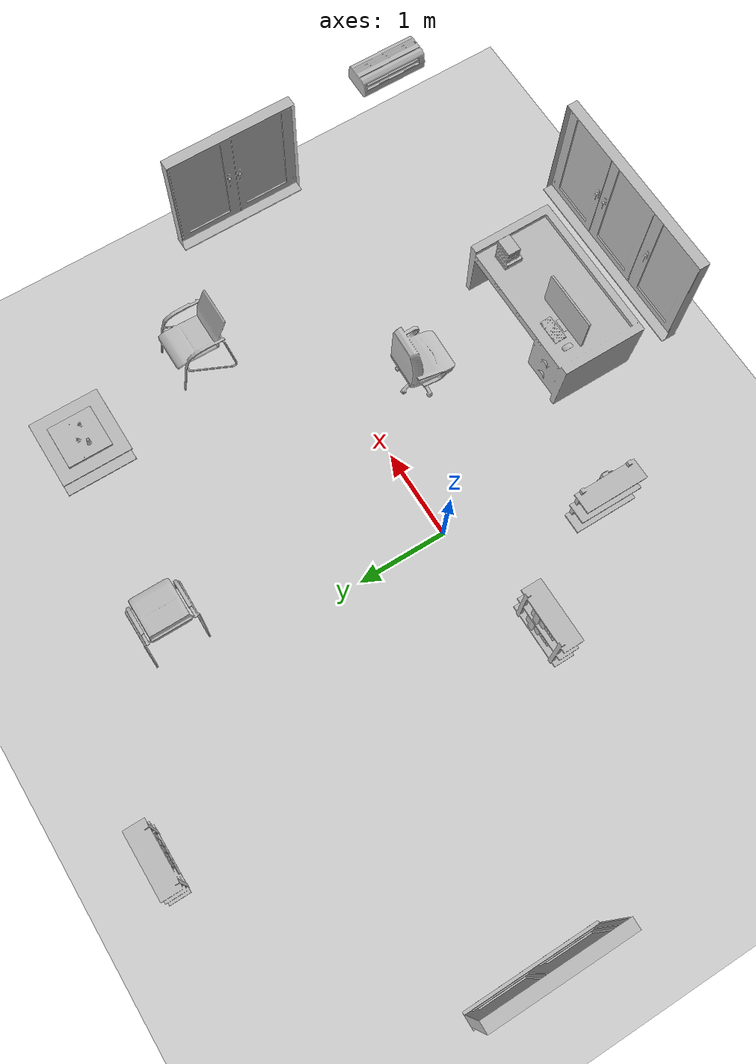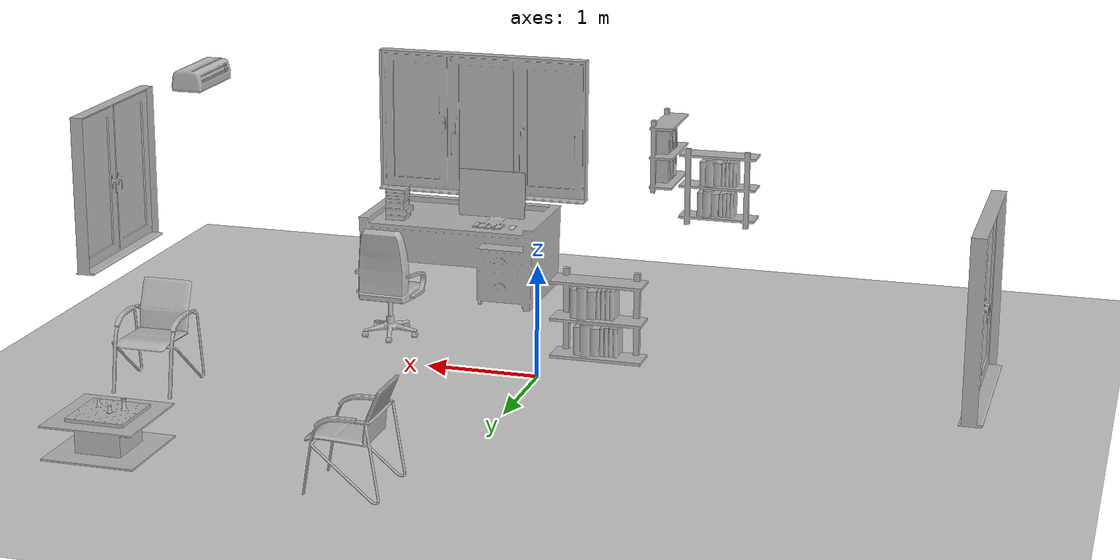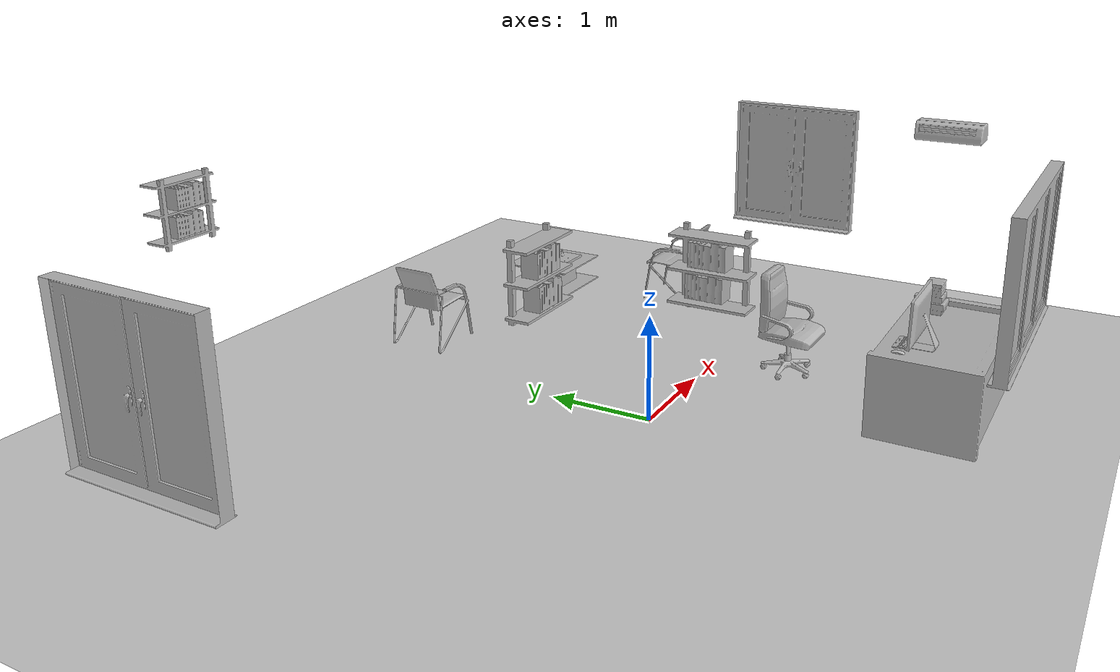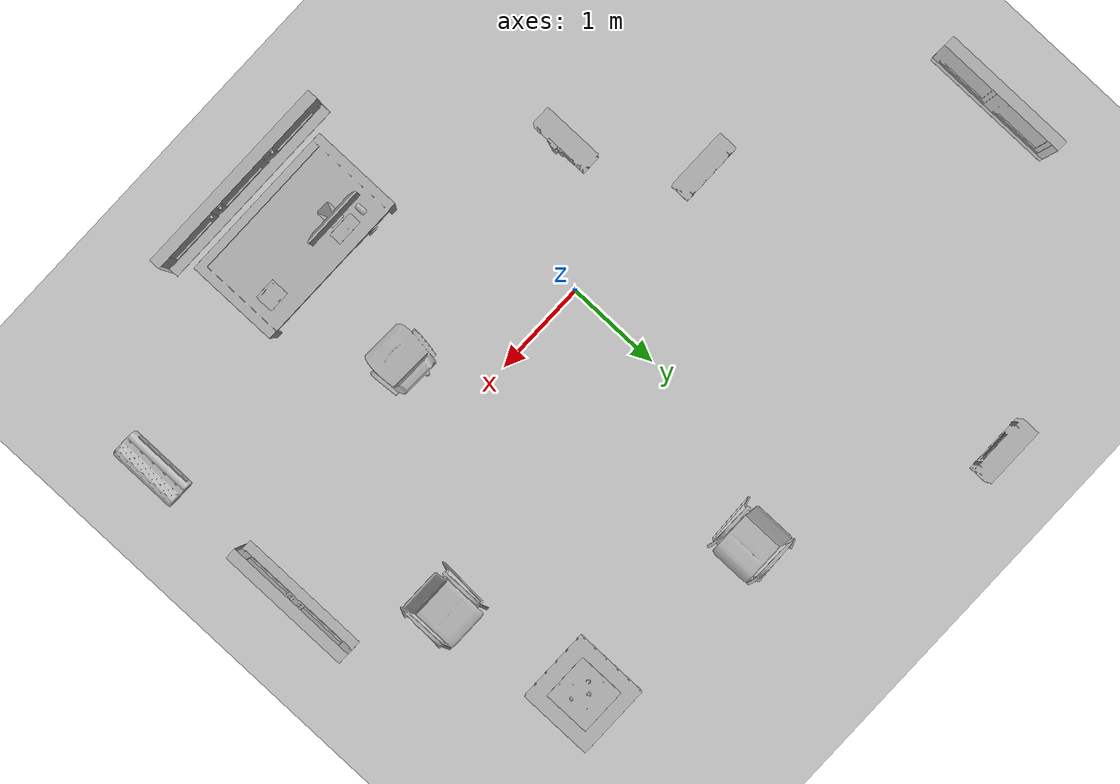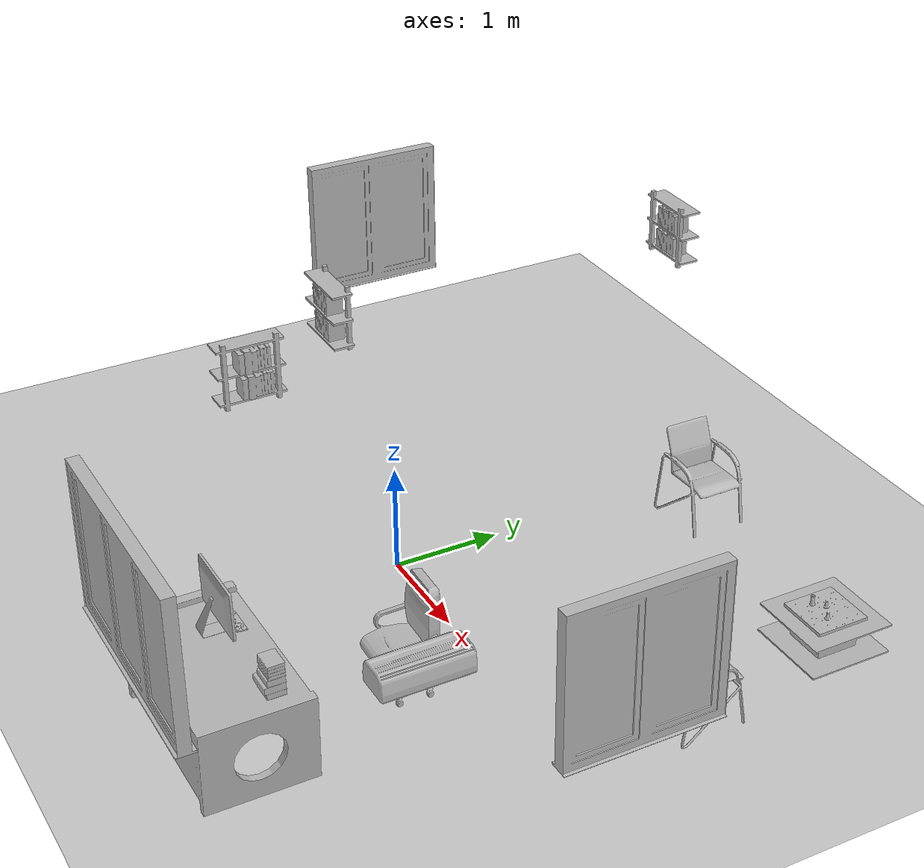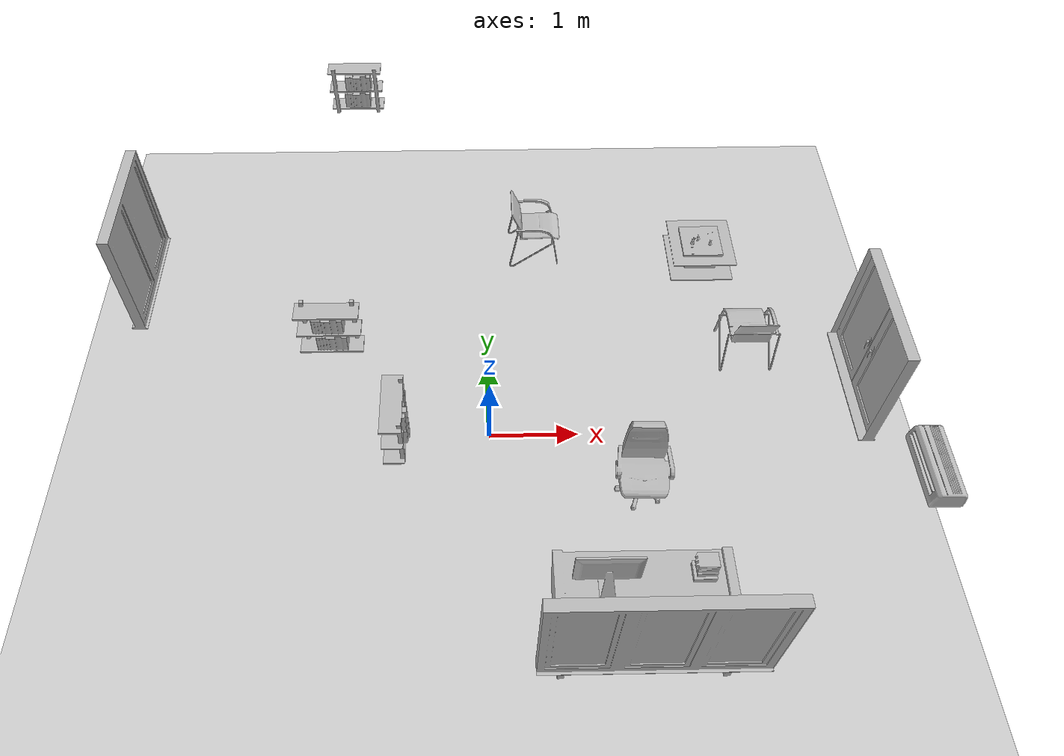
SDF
<sdf version="1.4">
 <world name="default">
  <light name="sun" type="directional">
   <pose>0 0 10 0 -0 0</pose>
   <diffuse>0.8 0.8 0.8 1</diffuse>
   <specular>0.2 0.2 0.2 1</specular>
   <attenuation>
    <range>1000</range>
    <constant>0.9</constant>
    <linear>0.01</linear>
    <quadratic>0.001</quadratic>
   </attenuation>
   <direction>-0.5 0.1 -0.9</direction>
  </light>
  <model name="ground_plane">
   <static>1</static>
   <link name="link">
    <collision name="collision">
     <geometry><plane><normal>0 0 1</normal><size>100 100</size></plane></geometry>
     <surface><friction><ode><mu>100</mu><mu2>50</mu2></ode></friction></surface>
    </collision>
    <visual name="visual">
     <cast_shadows>0</cast_shadows>
     <geometry><plane><normal>0 0 1</normal><size>100 100</size></plane></geometry>
     <material>
      <script><uri>file://media/materials/scripts/gazebo.material</uri><name>Gazebo/Grey</name></script>
     </material>
    </visual>
    <velocity_decay><linear>0</linear><angular>0</angular></velocity_decay>
   </link>
  </model>
  <physics type="ode">
   <max_step_size>0.001</max_step_size>
   <real_time_factor>1</real_time_factor>
   <real_time_update_rate>1000</real_time_update_rate>
   <gravity>0 0 -9.8</gravity>
  </physics>
  <scene><ambient>0.4 0.4 0.4 1</ambient><background>0.7 0.7 0.7 1</background><shadows>1</shadows></scene>
  <spherical_coordinates>
   <surface_model>EARTH_WGS84</surface_model>
   <latitude_deg>0</latitude_deg>
   <longitude_deg>0</longitude_deg>
   <elevation>0</elevation>
   <heading_deg>0</heading_deg>
  </spherical_coordinates>
  <model name="209_0">
   <pose>-3.90553 1.67931 0.8 0 -0 3.14159</pose>
   <static>1</static>
   <link name="link">
    <collision name="collision"><geometry><box><size>0.175 1.4 2</size></box></geometry></collision>
    <visual name="visual"><geometry><mesh><uri>model://209/209.dae</uri></mesh></geometry></visual>
    <velocity_decay><linear>0</linear><angular>0</angular></velocity_decay>
   </link>
  </model>
  <model name="210_0">
   <pose>1.40734 -2.89678 0.8 0 -0 1.5708</pose>
   <static>1</static>
   <link name="link">
    <collision name="collision"><geometry><box><size>0.175 2.1 2</size></box></geometry></collision>
    <visual name="visual"><geometry><mesh><uri>model://210/210.dae</uri></mesh></geometry></visual>
    <velocity_decay><linear>0</linear><angular>0</angular></velocity_decay>
   </link>
  </model>
  <model name="209_1">
   <pose>3.89658 0.079304 0.8 0 -0 3.14159</pose>
   <static>1</static>
   <link name="link">
    <collision name="collision"><geometry><box><size>0.175 1.4 2</size></box></geometry></collision>
    <visual name="visual"><geometry><mesh><uri>model://209/209.dae</uri></mesh></geometry></visual>
    <velocity_decay><linear>0</linear><angular>0</angular></velocity_decay>
   </link>
  </model>
  <model name="106_0">
   <pose>1.60658 -0.755903 0 0 -0 1.53812</pose>
   <static>1</static>
   <link name="link">
    <collision name="collision"><geometry><box><size>0.550393 0.596196 2</size></box></geometry></collision>
    <visual name="visual"><geometry><mesh><uri>model://106/106.dae</uri></mesh></geometry></visual>
    <velocity_decay><linear>0</linear><angular>0</angular></velocity_decay>
   </link>
  </model>
  <model name="430_0">
   <pose>1.43156 -2.25954 0 0 -0 1.5708</pose>
   <static>1</static>
   <link name="link">
    <collision name="collision"><geometry><box><size>0.970014 1.72969 2</size></box></geometry></collision>
    <visual name="visual"><geometry><mesh><uri>model://430/430.dae</uri></mesh></geometry></visual>
    <velocity_decay><linear>0</linear><angular>0</angular></velocity_decay>
   </link>
  </model>
  <model name="189_0">
   <pose>1.05878 -2.0754 0.74222 0 -0 1.5708</pose>
   <static>1</static>
   <link name="link">
    <collision name="collision"><geometry><box><size>0.359507 0.6495 2</size></box></geometry></collision>
    <visual name="visual"><geometry><mesh><uri>model://189/189.dae</uri></mesh></geometry></visual>
    <velocity_decay><linear>0</linear><angular>0</angular></velocity_decay>
   </link>
  </model>
  <model name="456_0">
   <pose>-1.58455 0.130164 1.53 0 0 -1.5708</pose>
   <static>1</static>
   <link name="link">
    <collision name="collision"><geometry><box><size>0.2 0.63 2</size></box></geometry></collision>
    <visual name="visual"><geometry><mesh><uri>model://456/456.dae</uri></mesh></geometry></visual>
    <velocity_decay><linear>0</linear><angular>0</angular></velocity_decay>
   </link>
  </model>
  <model name="456_1">
   <pose>-1.56055 3.88913 1.53 0 -0 1.5708</pose>
   <static>1</static>
   <link name="link">
    <collision name="collision"><geometry><box><size>0.2 0.63 2</size></box></geometry></collision>
    <visual name="visual"><geometry><mesh><uri>model://456/456.dae</uri></mesh></geometry></visual>
    <velocity_decay><linear>0</linear><angular>0</angular></velocity_decay>
   </link>
  </model>
  <model name="456_2">
   <pose>-0.907984 -0.952687 1.53 0 -0 3.14159</pose>
   <static>1</static>
   <link name="link">
    <collision name="collision"><geometry><box><size>0.2 0.63 2</size></box></geometry></collision>
    <visual name="visual"><geometry><mesh><uri>model://456/456.dae</uri></mesh></geometry></visual>
    <velocity_decay><linear>0</linear><angular>0</angular></velocity_decay>
   </link>
  </model>
  <model name="320_2">
   <pose>-1.56775 0.131823 1.60509 0 -0 1.5597</pose>
   <static>1</static>
   <link name="link">
    <collision name="collision"><geometry><box><size>0.18708 0.300509 2</size></box></geometry></collision>
    <visual name="visual"><geometry><mesh><uri>model://320/320.dae</uri></mesh></geometry></visual>
    <velocity_decay><linear>0</linear><angular>0</angular></velocity_decay>
   </link>
  </model>
  <model name="320_3">
   <pose>-1.58486 0.132885 1.86631 0 -0 1.5597</pose>
   <static>1</static>
   <link name="link">
    <collision name="collision"><geometry><box><size>0.18708 0.300509 2</size></box></geometry></collision>
    <visual name="visual"><geometry><mesh><uri>model://320/320.dae</uri></mesh></geometry></visual>
    <velocity_decay><linear>0</linear><angular>0</angular></velocity_decay>
   </link>
  </model>
  <model name="320_4">
   <pose>-1.52431 3.87581 1.86221 0 -0 1.5597</pose>
   <static>1</static>
   <link name="link">
    <collision name="collision"><geometry><box><size>0.18708 0.300509 2</size></box></geometry></collision>
    <visual name="visual"><geometry><mesh><uri>model://320/320.dae</uri></mesh></geometry></visual>
    <velocity_decay><linear>0</linear><angular>0</angular></velocity_decay>
   </link>
  </model>
  <model name="320_5">
   <pose>-1.55317 3.88765 1.60806 0 -0 1.5708</pose>
   <static>1</static>
   <link name="link">
    <collision name="collision"><geometry><box><size>0.18708 0.300509 2</size></box></geometry></collision>
    <visual name="visual"><geometry><mesh><uri>model://320/320.dae</uri></mesh></geometry></visual>
    <velocity_decay><linear>0</linear><angular>0</angular></velocity_decay>
   </link>
  </model>
  <model name="319_0">
   <pose>1.97841 -2.03271 0.739996 0 -0 0</pose>
   <static>1</static>
   <link name="link">
    <collision name="collision"><geometry><box><size>0.22 0.19 2</size></box></geometry></collision>
    <visual name="visual"><geometry><mesh><uri>model://319/319.dae</uri></mesh></geometry></visual>
    <velocity_decay><linear>0</linear><angular>0</angular></velocity_decay>
   </link>
  </model>
  <model name="320_7">
   <pose>-0.857998 -0.905251 1.61308 0 0 -0.011135</pose>
   <static>1</static>
   <link name="link">
    <collision name="collision"><geometry><box><size>0.18708 0.300509 2</size></box></geometry></collision>
    <visual name="visual"><geometry><mesh><uri>model://320/320.dae</uri></mesh></geometry></visual>
    <velocity_decay><linear>0</linear><angular>0</angular></velocity_decay>
   </link>
  </model>
  <model name="320_8">
   <pose>-0.857544 -0.923356 1.86206 0 0 -0.011135</pose>
   <static>1</static>
   <link name="link">
    <collision name="collision"><geometry><box><size>0.18708 0.300509 2</size></box></geometry></collision>
    <visual name="visual"><geometry><mesh><uri>model://320/320.dae</uri></mesh></geometry></visual>
    <velocity_decay><linear>0</linear><angular>0</angular></velocity_decay>
   </link>
  </model>
  <model name="542_0">
   <pose>2.75864 2.6694 0 0 -0 0</pose>
   <static>1</static>
   <link name="link">
    <collision name="collision"><geometry><box><size>0.79 0.79 2</size></box></geometry></collision>
    <visual name="visual"><geometry><mesh><uri>model://542/542.dae</uri></mesh></geometry></visual>
    <velocity_decay><linear>0</linear><angular>0</angular></velocity_decay>
   </link>
  </model>
  <model name="425_0">
   <pose>0.61998 2.85463 0 0 -0 0</pose>
   <static>1</static>
   <link name="link">
    <collision name="collision"><geometry><box><size>0.632125 0.610274 2</size></box></geometry></collision>
    <visual name="visual"><geometry><mesh><uri>model://425/425.dae</uri></mesh></geometry></visual>
    <velocity_decay><linear>0</linear><angular>0</angular></velocity_decay>
   </link>
  </model>
  <model name="425_1">
   <pose>3.05522 1.14831 0 0 -0 1.5708</pose>
   <static>1</static>
   <link name="link">
    <collision name="collision"><geometry><box><size>0.632125 0.610274 2</size></box></geometry></collision>
    <visual name="visual"><geometry><mesh><uri>model://425/425.dae</uri></mesh></geometry></visual>
    <velocity_decay><linear>0</linear><angular>0</angular></velocity_decay>
   </link>
  </model>
  <model name="340_0">
   <pose>2.75174 2.67329 0.29 0 -0 0</pose>
   <static>1</static>
   <link name="link">
    <collision name="collision"><geometry><box><size>0.5 0.5 2</size></box></geometry></collision>
    <visual name="visual"><geometry><mesh><uri>model://340/340.dae</uri></mesh></geometry></visual>
    <velocity_decay><linear>0</linear><angular>0</angular></velocity_decay>
   </link>
  </model>
  <model name="225_0">
   <pose>3.8385 -1.66069 2 0 0 -3.14159</pose>
   <static>1</static>
   <link name="link">
    <collision name="collision"><geometry><box><size>0.31 0.710003 2</size></box></geometry></collision>
    <visual name="visual"><geometry><mesh><uri>model://225/225.dae</uri></mesh></geometry></visual>
    <velocity_decay><linear>0</linear><angular>0</angular></velocity_decay>
   </link>
  </model>
 </world>
</sdf>
